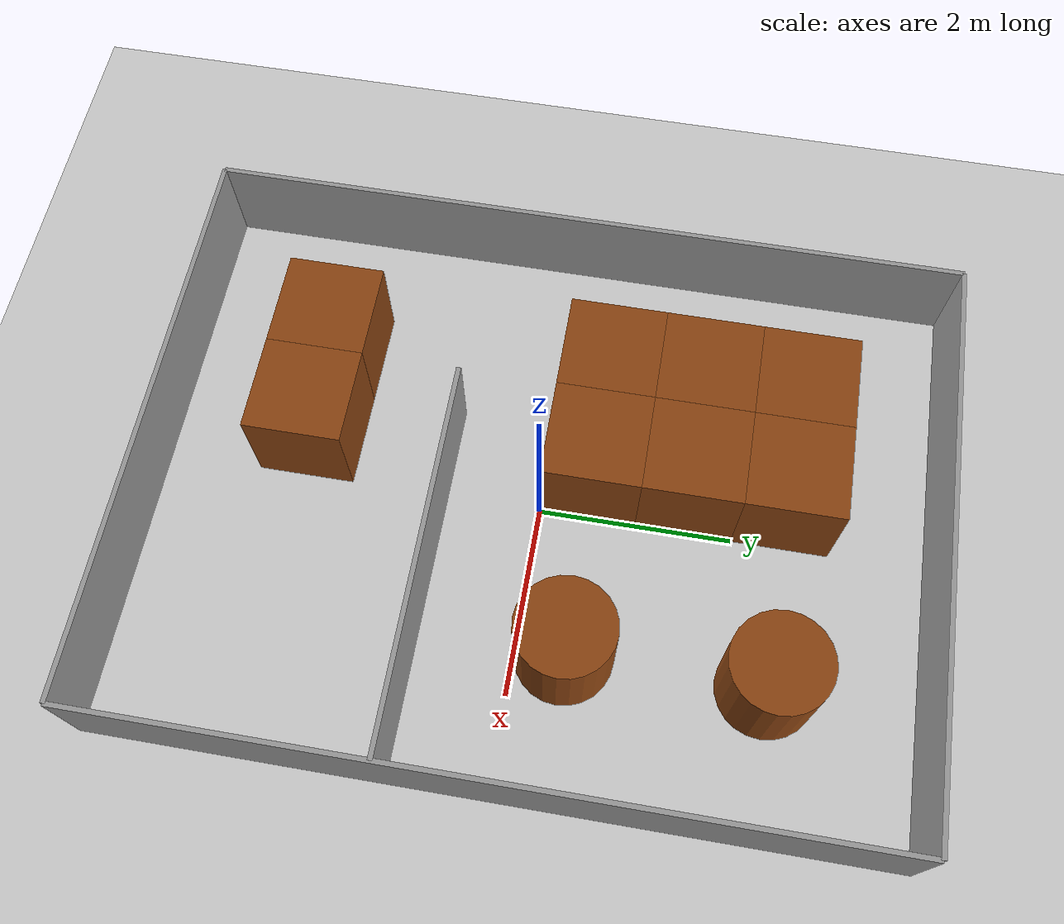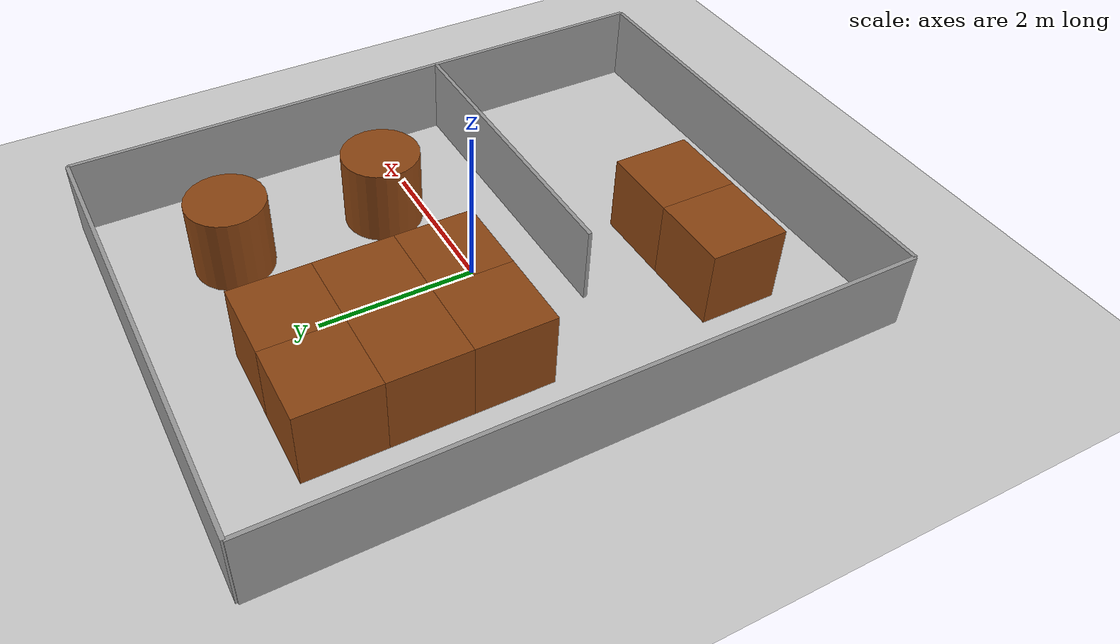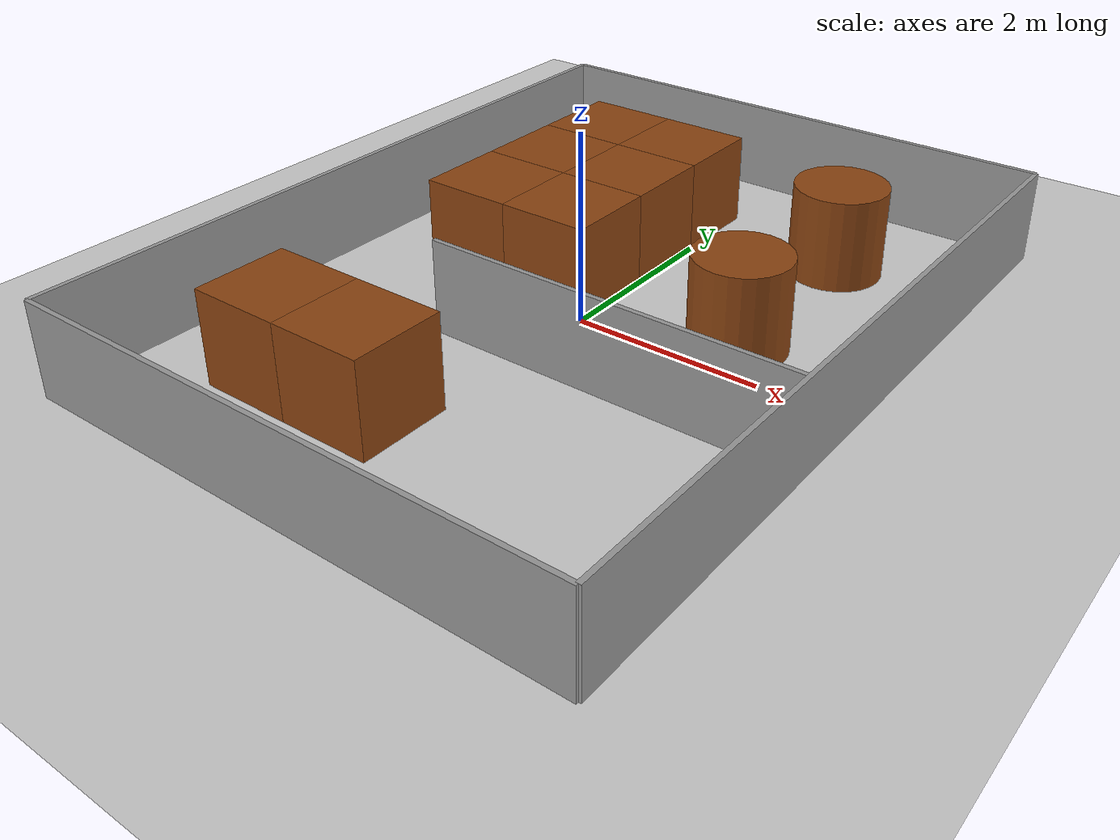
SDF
<sdf version="1.8">
 <world name="custom_world">
  <physics type="ode">
   <max_step_size>0.001</max_step_size>
   <real_time_factor>1</real_time_factor>
   <real_time_update_rate>1000</real_time_update_rate>
   <ode>
    <solver>
     <type>quick</type>
     <iters>150</iters>
     <precon_iters>0</precon_iters>
     <sor>1.400000</sor>
     <use_dynamic_moi_rescaling>1</use_dynamic_moi_rescaling>
    </solver>
    <constraints>
     <cfm>0.00001</cfm>
     <erp>0.2</erp>
     <contact_max_correcting_vel>2000.000000</contact_max_correcting_vel>
     <contact_surface_layer>0.01000</contact_surface_layer>
    </constraints>
   </ode>
  </physics>
  <plugin filename="gz-sim-physics-system" name="gz::sim::systems::Physics"/>
  <plugin filename="gz-sim-user-commands-system" name="gz::sim::systems::UserCommands"/>
  <plugin filename="gz-sim-scene-broadcaster-system" name="gz::sim::systems::SceneBroadcaster"/>
  <plugin filename="gz-sim-sensors-system" name="gz::sim::systems::Sensors">
   <render_engine>ogre2</render_engine>
  </plugin>
  <plugin filename="gz-sim-imu-system" name="gz::sim::systems::Imu"/>
  <include><uri>https://fuel.gazebosim.org/1.0/OpenRobotics/models/Ground Plane</uri></include>
  <include><uri>https://fuel.gazebosim.org/1.0/OpenRobotics/models/Sun</uri></include>
  <model name="wall_south">
   <static>true</static>
   <pose>0 -4 0.5 0 0 0</pose>
   <link name="link">
    <collision name="collision"><geometry><box><size>6.0 0.05 1.0</size></box></geometry></collision>
    <visual name="visual">
     <geometry><box><size>6.0 0.05 1.0</size></box></geometry>
     <material><ambient>0.6 0.6 0.6 1</ambient></material>
    </visual>
   </link>
  </model>
  <model name="wall_north">
   <static>true</static>
   <pose>0 4 0.5 0 0 0</pose>
   <link name="link">
    <collision name="collision"><geometry><box><size>6.0 0.05 1.0</size></box></geometry></collision>
    <visual name="visual">
     <geometry><box><size>6.0 0.05 1.0</size></box></geometry>
     <material><ambient>0.6 0.6 0.6 1</ambient></material>
    </visual>
   </link>
  </model>
  <model name="wall_west">
   <static>true</static>
   <pose>-3 0 0.5 0 0 0</pose>
   <link name="link">
    <collision name="collision"><geometry><box><size>0.05 8.0 1.0</size></box></geometry></collision>
    <visual name="visual">
     <geometry><box><size>0.05 8.0 1.0</size></box></geometry>
     <material><ambient>0.6 0.6 0.6 1</ambient></material>
    </visual>
   </link>
  </model>
  <model name="wall_east">
   <static>true</static>
   <pose>3 0 0.5 0 0 0</pose>
   <link name="link">
    <collision name="collision"><geometry><box><size>0.05 8.0 1.0</size></box></geometry></collision>
    <visual name="visual">
     <geometry><box><size>0.05 8.0 1.0</size></box></geometry>
     <material><ambient>0.6 0.6 0.6 1</ambient><diffuse>0.6 0.6 0.6 1</diffuse></material>
    </visual>
   </link>
  </model>
  <model name="wall_divider">
   <static>true</static>
   <pose>1.0 -1.0 0.5 0 0 0</pose>
   <link name="link">
    <collision name="collision"><geometry><box><size>4.0 0.05 1.0</size></box></geometry></collision>
    <visual name="visual">
     <geometry><box><size>4.0 0.05 1.0</size></box></geometry>
     <material><ambient>0.6 0.6 0.6 1</ambient></material>
    </visual>
   </link>
  </model>
  <include><uri>model://box_obstacle</uri><name>box_obstacle_1.1</name><pose>-1.5 0.5 0.5 0 0 0</pose></include>
  <include><uri>model://box_obstacle</uri><name>box_obstacle_1.2</name><pose>-0.5 0.5 0.5 0 0 0</pose></include>
  <include><uri>model://box_obstacle</uri><name>box_obstacle_1.3</name><pose>-1.5 1.5 0.5 0 0 0</pose></include>
  <include><uri>model://box_obstacle</uri><name>box_obstacle_1.4</name><pose>-0.5 1.5 0.5 0 0 0</pose></include>
  <include><uri>model://box_obstacle</uri><name>box_obstacle_1.5</name><pose>-1.5 2.5 0.5 0 0 0</pose></include>
  <include><uri>model://box_obstacle</uri><name>box_obstacle_1.6</name><pose>-0.5 2.5 0.5 0 0 0</pose></include>
  <include>
   <uri>model://cylinder_obstacle</uri>
   <name>cylinder_obstacle_1</name>
   <pose>1.5 2.5 0.5 0 0 0</pose>
  </include>
  <include>
   <uri>model://cylinder_obstacle</uri>
   <name>cylinder_obstacle_2</name>
   <pose>1.5 0.5 0.5 0 0 0</pose>
  </include>
  <include>
   <uri>model://box_obstacle</uri>
   <name>box_obstacle_2.1</name>
   <pose>-1.5 -2.5 0.5 0 0 0</pose>
  </include>
  <include>
   <uri>model://box_obstacle</uri>
   <name>box_obstacle_2.2</name>
   <pose>-0.5 -2.5 0.5 0 0 0</pose>
  </include>
 </world>
</sdf>

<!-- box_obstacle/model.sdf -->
<sdf version="1.8">
  <model name="box_obstacle">
    <static>true</static>

    <link name="link">

      <inertial>
        <mass>1000</mass>
        <inertia>
          <ixx>1</ixx><ixy>0</ixy><ixz>0</ixz>
          <iyy>1</iyy><iyz>0</iyz>
          <izz>1</izz>
        </inertia>
      </inertial>

      <collision name="collision">
        <geometry>
          <box>
            <size>1.0 1.0 1.0</size>
          </box>
        </geometry>
        <surface>
          <contact><ode/></contact>
          <friction><ode><mu>100</mu><mu2>50</mu2></ode></friction>
        </surface>
      </collision>

      <visual name="visual">
        <geometry>
          <box>
            <size>1.0 1.0 1.0</size>
          </box>
        </geometry>
        <material>
          <!-- Brown-grey -->
          <ambient>0.55 0.27 0.07 1</ambient>
          <diffuse>0.55 0.27 0.07 1</diffuse>
          <specular>0.1 0.1 0.1 1</specular>
          <emissive>0 0 0 1</emissive>
        </material>
      </visual>

    </link>
  </model>
</sdf>

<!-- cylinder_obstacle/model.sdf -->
<sdf version="1.8">
  <model name="cylinder_obstacle">
    <static>true</static>

    <link name="link">

      <inertial>
        <mass>1000</mass>
        <inertia>
          <ixx>1</ixx><ixy>0</ixy><ixz>0</ixz>
          <iyy>1</iyy><iyz>0</iyz>
          <izz>1</izz>
        </inertia>
      </inertial>

      <collision name="collision">
        <geometry>
          <cylinder>
            <radius>0.5</radius>
            <length>1.0</length>
          </cylinder>
        </geometry>
        <surface>
          <contact><ode/></contact>
          <friction><ode><mu>100</mu><mu2>50</mu2></ode></friction>
        </surface>
      </collision>

      <visual name="visual">
        <geometry>
          <cylinder>
            <radius>0.5</radius>
            <length>1.0</length>
          </cylinder>
        </geometry>
        <material>
          <!-- Brown-grey -->
          <ambient>0.55 0.27 0.07 1</ambient>
          <diffuse>0.55 0.27 0.07 1</diffuse>
          <specular>0.1 0.1 0.1 1</specular>
          <emissive>0 0 0 1</emissive>
        </material>
      </visual>

    </link>
  </model>
</sdf>
